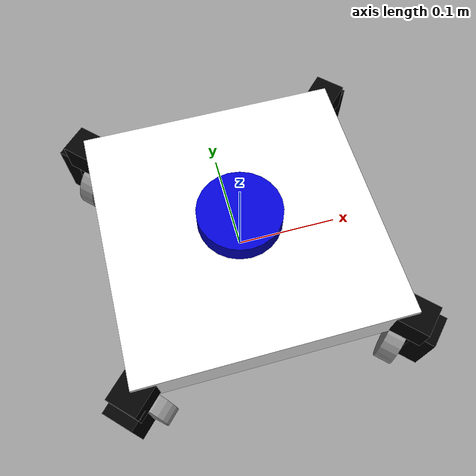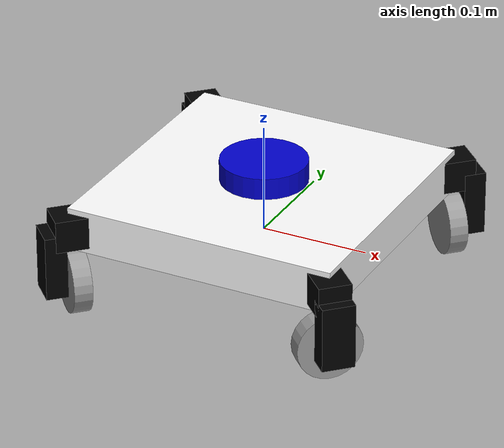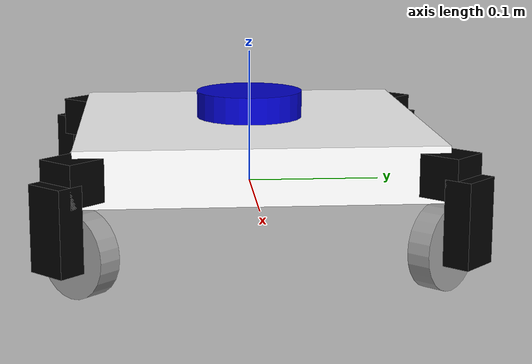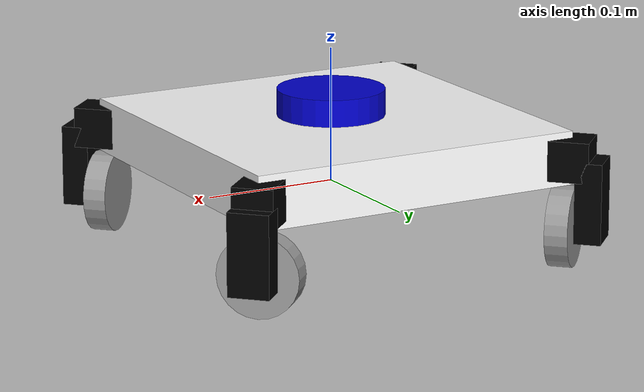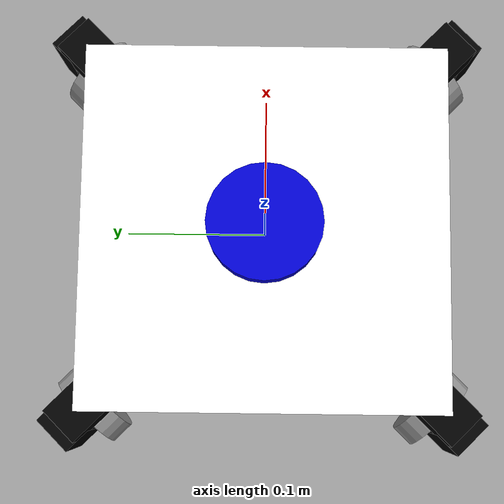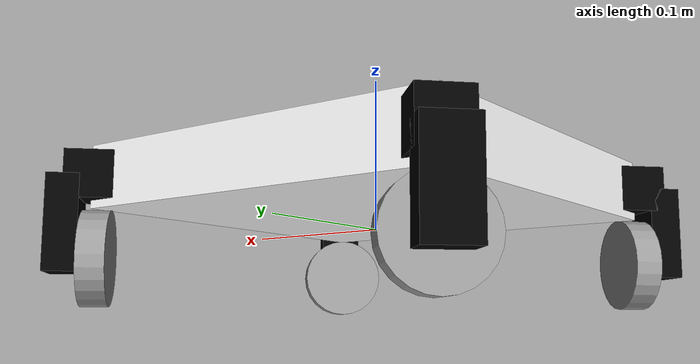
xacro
<?xml version="1.0"?>
<robot name="conveyor" xmlns:xacro="http://www.ros.org/wiki/xacro">

    <!-- PROPERTY LIST -->

    <!-- Main Body Box -->
    <xacro:property name="base_length" value="0.255" /> <!-- in m-->
    <xacro:property name="base_height" value="0.04" /> <!-- in m-->
    <xacro:property name="base_mass" value="10" /> <!-- in kg-->

    <!-- caster wheel radius and height -->
    <!-- caster wheel mass -->
    <xacro:property name="servo_cube" value="0.03" /> <!-- in m-->
    <xacro:property name="servo_mass" value="2.5" /> <!-- in kg-->

    <!-- Hokuyo Laser scanner -->
    <xacro:property name="hokuyo_size" value="0.04" />

    <xacro:include filename="$(find conveyor_description_pkg)/urdf/wheel_joints.urdf.xacro" />

    <!-- ros_control plugin -->
    <gazebo>
        <plugin name="gazebo_ros_control" filename="libgazebo_ros_control.so">
            <robotNamespace>/conveyor</robotNamespace>
            <robotSimType>gazebo_ros_control/DefaultRobotHWSim</robotSimType>
        </plugin>
    </gazebo>

    <!-- BASE-FOOTPRINT -->
    <!-- base_footprint is a fictitious link(frame) that is on the ground right below base_link
    origin -->
    <link name="base_footprint">
        <visual>
            <origin xyz="0 0 0" rpy="0 0 0" />
            <geometry>
                <box size="0.001 0.001 0.001" />
            </geometry>
        </visual>
    </link>

    <gazebo reference="base_footprint">
        <turnGravityOff>false</turnGravityOff>
        <mu1>0.2</mu1>
        <mu2>0.2</mu2>
        <material>Gazebo/Black</material>
    </gazebo>

    <joint name="base_footprint_joint" type="fixed">
        <origin xyz="0 0 ${wheel_radius}" rpy="0 0 0" />
        <parent link="base_footprint" />
        <child link="base_link" />
    </joint>

    <!-- BASE-LINK -->
    <!--Actual
    body/chassis of the robot-->
    <link name="base_link">
        <inertial>
            <mass value="${base_mass}" />
            <origin xyz="0 0 0" />
            <xacro:box_inertia m="${base_mass}" w="${base_length}" h="${base_length}"
                d="${base_height}" />
        </inertial>
        <visual>
            <origin xyz="0 0 0" rpy="0 0 0" />
            <geometry>
                <box size="${base_length} ${base_length} ${base_height}" />
            </geometry>
            <material name="White" />
        </visual>
        <collision>
            <origin xyz="0 0 0" rpy="0 0 0 " />
            <geometry>
                <box size="${base_length} ${base_length} ${base_height}" />
            </geometry>
        </collision>
    </link>
    <gazebo reference="base_link">
        <material>Gazebo/White</material>
        <turnGravityOff>false</turnGravityOff>
    </gazebo>

    <!-- Wheel 1 -->
    <xacro:servo front="front" right="left" parent="base_link" axisX="1" axisY="1"
        angle="${3*M_PI/4}" /> <!-- ${-M_PI/4} -->
    <xacro:wheel fb="front" lr="left" parent="servo_front_left_link" translateX="0"
        translateY="-0.005"
        translateZ="${-base_height-0.011}" flipY="1" flipX="0" rot="-1" />
    <!-- Wheel 2 -->
    <xacro:servo front="front" right="right" parent="base_link" axisX="1" axisY="-1"
        angle="${M_PI/4}" /> <!-- ${5*M_PI/4} -->
    <xacro:wheel fb="front" lr="right" parent="servo_front_right_link" translateX="0"
        translateY="-0.005"
        translateZ="${-base_height-0.011}" flipY="1" flipX="1" rot="1" />
    <!-- Wheel 3 -->
    <xacro:servo front="back" right="left" parent="base_link" axisX="-1" axisY="1"
        angle="${5*M_PI/4}" /> <!-- ${M_PI/4} -->
    <xacro:wheel fb="back" lr="left" parent="servo_back_left_link" translateX="0"
        translateY="-0.005"
        translateZ="${-base_height-0.011}" flipY="1" flipX="0" rot="-1" />
    <!-- Wheel 4 -->
    <xacro:servo front="back" right="right" parent="base_link" axisX="-1" axisY="-1"
        angle="${-M_PI/4}" /> <!-- ${3*M_PI/4} -->
    <xacro:wheel fb="back" lr="right" parent="servo_back_right_link" translateX="0"
        translateY="-0.005"
        translateZ="${-base_height-0.011}" flipY="1" flipX="1" rot="1" />

    <!-- laser -->

    <link name="hokuyo_link">
        <visual>
            <origin xyz="0 0 0" rpy="0 0 0" />
            <geometry>
                <cylinder radius="${hokuyo_size}" length="${hokuyo_size/2}" />
            </geometry>
            <material name="Blue" />
        </visual>
        <collision>
            <origin xyz="0 0 0" rpy="0 0 0" />
            <geometry>
                <cylinder radius="${hokuyo_size}" length="${hokuyo_size/2}" />
            </geometry>
        </collision>
    </link>

    <joint name="hokuyo_joint" type="fixed">
        <origin xyz="0 0 ${base_height/2+hokuyo_size/4}" rpy="0 0 0" />
        <parent link="base_link" />
        <child link="hokuyo_link" />
    </joint>

    <gazebo reference="hokuyo_link">
        <material>Gazebo/Blue</material>
        <turnGravityOff>false</turnGravityOff>
        <sensor type="ray" name="head_hokuyo_sensor">
            <origin xyz="${base_length/2} 0 ${-base_height}" rpy="0 0 " />
            <visualize>false</visualize>
            <update_rate>10</update_rate>
            <ray>
                <scan>
                    <horizontal>
                        <samples>360</samples> <!-- Angular Range 360° | Angular Resolution 1° -->
                        <resolution>1</resolution>
                        <min_angle>-3.141592</min_angle>
                        <max_angle>3.141592</max_angle>
                    </horizontal>
                </scan>
                <range>
                    <min>0.1</min>
                    <max>20.0</max>
                    <resolution>0.001</resolution>
                </range>
            </ray>
            <plugin name="gazebo_ros_head_hokuyo_controller" filename="libgazebo_ros_laser.so">
                <topicName>/scan</topicName>
                <frameName>hokuyo_link</frameName>
            </plugin>
        </sensor>
    </gazebo>

    <gazebo>
        <plugin name="p3d_base_controller" filename="libgazebo_ros_p3d.so">
            <alwaysOn>true</alwaysOn>
            <updateRate>50.0</updateRate>
            <bodyName>base_link</bodyName>
            <topicName>ground_truth/state</topicName>
            <gaussianNoise>0.01</gaussianNoise>
            <frameName>world</frameName>
            <xyzOffsets>0 0 0</xyzOffsets>
            <rpyOffsets>0 0 0</rpyOffsets>
        </plugin>
    </gazebo>

</robot>

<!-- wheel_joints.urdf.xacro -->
<robot name="wheel" xmlns:xacro="http://www.ros.org/wiki/xacro">

  <!--All
  units in m-kg-s-radians unit system -->
  <xacro:property name="M_PI" value="3.1415926535897931" />
  <xacro:property name="M_PI_2" value="1.570796327" />
  <xacro:property name="DEG_TO_RAD" value="0.017453293" />

  <!-- ################ Wheels ####################################### -->

  <xacro:property name="wheel_radius" value="0.03" /> <!-- in m-->
  <xacro:property name="wheel_height" value="0.017" /> <!-- in m-->
  <xacro:property name="wheel_mass" value="5" /> <!-- in kg-->

  <xacro:property name="base_x_origin_to_wheel_origin" value="0" />
  <xacro:property name="base_y_origin_to_wheel_origin" value="0" />
  <xacro:property name="base_z_origin_to_wheel_origin" value="0" />

  <!-- Macro Definition -->
  <xacro:macro name="cylinder_inertia" params="m r h">
    <inertia ixx="${m*(3*r*r+h*h)/12}" ixy="0" ixz="0"
      iyy="${m*(3*r*r+h*h)/12}" iyz="0"
      izz="${m*r*r/2}" />
  </xacro:macro>

  <xacro:macro name="wheel" params="fb lr parent translateX translateY translateZ flipY flipX rot">
    <!--fb
    : front, back ; lr: left, right -->
    <link name="${fb}_${lr}_wheel">
      <visual>
        <origin xyz="0 0 0" rpy="${flipY*M_PI/2} 0  0 " />
        <geometry>
          <cylinder length="${wheel_height}" radius="${wheel_radius}" />
        </geometry>
      </visual>
      <collision>
        <origin xyz="0 0 0" rpy="${flipY*M_PI/2} 0 0 " />
        <geometry>
          <cylinder length="${wheel_height}" radius="${wheel_radius}" />
        </geometry>
      </collision>
      <inertial>
        <mass value="${wheel_mass}" />
        <origin xyz="0 0 0" />
        <xacro:cylinder_inertia m="${wheel_mass}" r="${wheel_radius}" h="${wheel_height}" />
      </inertial>
    </link>

    <gazebo reference="${fb}_${lr}_wheel">
      <selfCollide>false</selfCollide>
      <surface>
        <friction>
          <ode>
            <mu>1.01</mu>
            <mu2>1.01</mu2>
            <fdir1>0 0 1</fdir1>
            <slip1>0</slip1>
            <slip2>0</slip2>
          </ode>
        </friction>
        <bounce>
          <restitution_coefficient>0.0</restitution_coefficient>
          <threshold>100000.0</threshold>
        </bounce>
        <contact>
          <ode>
            <soft_cfm>0.0</soft_cfm>
            <soft_erp>0.2</soft_erp>
            <kp>1000000000000.0</kp>
            <kd>1.0</kd>
            <max_vel>100.0</max_vel>
            <min_depth>0.001</min_depth>
          </ode>
        </contact>
      </surface>
      <material>Gazebo/Grey</material>
      <turnGravityOff>false</turnGravityOff>
    </gazebo>

    <joint name="${fb}_${lr}_wheel_joint" type="continuous">
      <parent link="${parent}" />
      <child link="${fb}_${lr}_wheel" />
      <origin xyz="${translateX} ${translateY} ${translateZ}" rpy="0 0 ${flipX*M_PI}" />
      <axis xyz="0 ${rot} 0" rpy="0  0" />
      <limit effort="100" velocity="100" />
      <joint_properties damping="0.0" friction="0.0" />
    </joint>

    <!-- Transmission -->
    <transmission name="${fb}_${lr}_wheel_joint_trans">
      <type>transmission_interface/SimpleTransmission</type>
      <joint name="${fb}_${lr}_wheel_joint">
        <hardwareInterface>hardware_interface/VelocityJointInterface</hardwareInterface>
      </joint>
      <actuator name="${fb}_${lr}_wheel_joint_motor">
        <hardwareInterface>hardware_interface/VelocityJointInterface</hardwareInterface>
        <mechanicalReduction>1</mechanicalReduction>
      </actuator>
    </transmission>

  </xacro:macro>

  <!-- ################ Joints ####################################### -->

  <!-- Box Inertia -->
  <xacro:macro name="box_inertia" params="m w h d">
    <inertia ixx="${m / 12.0 * (d*d + h*h)}" ixy="0.0" ixz="0.0" iyy="${m / 12.0 * (w*w + h*h)}"
      iyz="0.0" izz="${m / 12.0 * (w*w + d*d)}" />
  </xacro:macro>

  <!-- Defining the colors used in this robot -->
  <material name="Black">
    <color rgba="0.0 0.0 0.0 1.0" />
  </material>

  <material name="Red">
    <color rgba="0.8 0.0 0.0 1.0" />
  </material>

  <material name="White">
    <color rgba="1.0 1.0 1.0 1.0" />
  </material>

  <material name="Blue">
    <color rgba="0.0 0.0 0.8 1.0" />
  </material>

  <xacro:macro name="servo" params="front right parent axisX axisY angle">

    <!-- Servo link -->
    <link name="servo_${front}_${right}_link">

      <visual>
        <origin xyz="0 0 0" rpy="${M_PI/2} 0 0" />
        <geometry>
          <box size="${servo_cube} ${servo_cube} ${servo_cube}" />
        </geometry>
        <material name="Black" />
      </visual>
      <visual>
        <origin xyz="0 ${servo_cube/2} ${-servo_cube}" rpy="${M_PI/2} 0 0" />
        <geometry>
          <box size="${servo_cube} ${servo_cube*2} ${servo_cube/1.5}" />
        </geometry>
        <material name="Black" />
      </visual>

      <collision>
        <origin xyz="0 ${servo_cube/2} ${-servo_cube}" rpy="${M_PI/2} 0 0" />
        <geometry>
          <box size="${servo_cube} ${servo_cube*2} ${servo_cube/1.5}" />
        </geometry>
      </collision>
      <inertial>
        <mass value="${servo_mass}" />
        <origin xyz="0 0 0" />
        <xacro:box_inertia m="${servo_mass}" w="${servo_cube}" h="${servo_cube}" d="${servo_cube}" />
      </inertial>
    </link>

    <!-- Servo joint -->
    <joint name="servo_${front}_${right}_joint" type="revolute">
      <parent link="${parent}" />
      <child link="servo_${front}_${right}_link" />
      <origin xyz="${axisX * base_length/2}  ${axisY *base_length/2} 0" rpy="0 0 ${angle}" />
      <axis xyz="0 0 1" rpy="0 0 0" />
      <limit effort="500" velocity="500" lower="${1/2*M_PI}" upper="${3/2*M_PI}" />
      <dynamics damping="0" friction="0" />
    </joint>

    <gazebo reference="servo_${front}_${right}_link">
      <selfCollide>false</selfCollide>
      <turnGravityOff>false</turnGravityOff>
      <surface>
        <friction>
          <ode>
            <mu>1.01</mu>
            <mu2>1.01</mu2>
            <fdir1>0 0 1</fdir1>
            <slip1>0</slip1>
            <slip2>0</slip2>
          </ode>
        </friction>
        <bounce>
          <restitution_coefficient>0.0</restitution_coefficient>
          <threshold>100000.0</threshold>
        </bounce>
        <contact>
          <ode>
            <soft_cfm>0.0</soft_cfm>
            <soft_erp>0.2</soft_erp>
            <kp>1000000000000.0</kp>
            <kd>1.0</kd>
            <max_vel>100.0</max_vel>
            <min_depth>0.001</min_depth>
          </ode>
        </contact>
      </surface>
    </gazebo>

    <!-- Servo transmission -->
    <transmission name="tran_servo_${front}_${right}">
      <type>transmission_interface/SimpleTransmission</type>
      <joint name="servo_${front}_${right}_joint">
        <hardwareInterface>hardware_interface/EffortJointInterface</hardwareInterface>
      </joint>
      <actuator name="servo_${front}_${right}_motor">
        <hardwareInterface>hardware_interface/EffortJointInterface</hardwareInterface>
        <mechanicalReduction>1</mechanicalReduction>
      </actuator>
    </transmission>

  </xacro:macro>

</robot>
